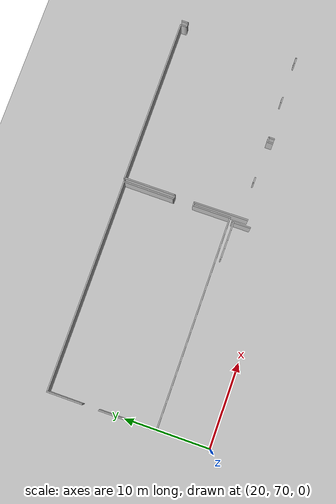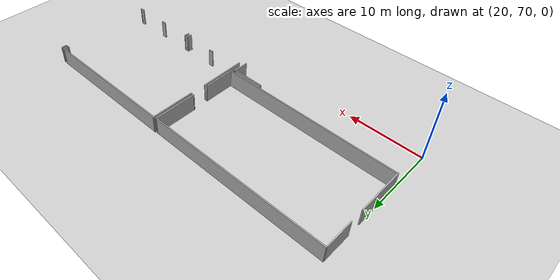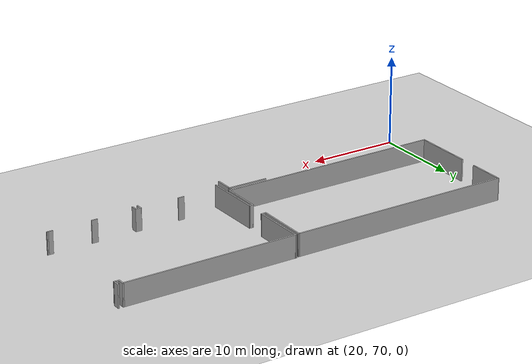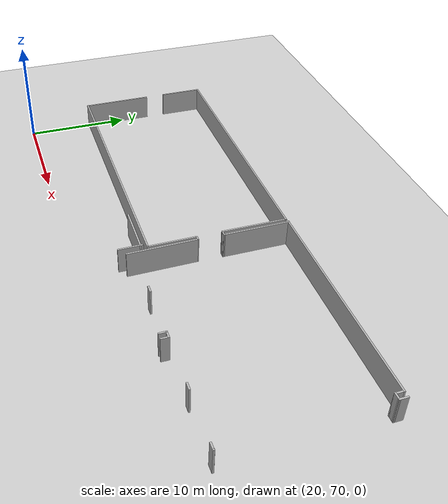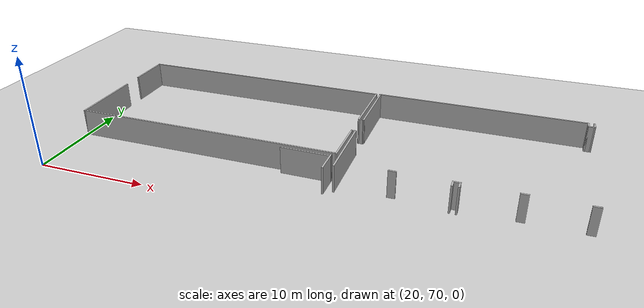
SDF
<sdf version="1.6">
 <world name="default">
  <model name="ground_plane">
   <static>1</static>
   <link name="link">
    <collision name="collision">
     <geometry><plane><normal>0 0 1</normal><size>200 100</size></plane></geometry>
     <surface><friction><ode><mu>100</mu><mu2>50</mu2></ode></friction></surface>
    </collision>
    <visual name="visual">
     <cast_shadows>0</cast_shadows>
     <geometry><plane><normal>0 0 1</normal><size>200 100</size></plane></geometry>
     <material>
      <script><uri>file://media/materials/scripts/gazebo.material</uri><name>Gazebo/Grey</name></script>
     </material>
    </visual>
   </link>
  </model>
  <model name="vgke_production">
   <link name="Wall_104">
    <pose>-53.3163 29.9969 0 0 -0 1.5808</pose>
    <visual name="Wall_104_Visual">
     <pose>0 0 1.25 0 -0 0</pose>
     <geometry><box><size>6.42774 0.15 2.5</size></box></geometry>
    </visual>
    <collision name="Wall_104_Collision">
     <pose>0 0 1.25 0 -0 0</pose>
     <geometry><box><size>6.42774 0.15 2.5</size></box></geometry>
    </collision>
    <inertial>
     <inertia><ixx>1</ixx><ixy>0</ixy><ixz>0</ixz><iyy>1</iyy><iyz>0</iyz><izz>1</izz></inertia>
     <mass>1</mass>
    </inertial>
   </link>
   <link name="Wall_110">
    <pose>-54.0352 27.3522 0 0 -0 1.5708</pose>
    <visual name="Wall_110_Visual">
     <pose>0 0 1.25 0 -0 0</pose>
     <geometry><box><size>2.25 0.15 2.5</size></box></geometry>
    </visual>
    <collision name="Wall_110_Collision">
     <pose>0 0 1.25 0 -0 0</pose>
     <geometry><box><size>2.25 0.15 2.5</size></box></geometry>
    </collision>
    <inertial>
     <inertia><ixx>1</ixx><ixy>0</ixy><ixz>0</ixz><iyy>1</iyy><iyz>0</iyz><izz>1</izz></inertia>
     <mass>1</mass>
    </inertial>
   </link>
   <link name="Wall_112">
    <pose>-56.2152 28.2522 0 0 0 -0.006883</pose>
    <visual name="Wall_112_Visual">
     <pose>0 0 1.25 0 -0 0</pose>
     <geometry><box><size>4.51595 0.15 2.5</size></box></geometry>
    </visual>
    <collision name="Wall_112_Collision">
     <pose>0 0 1.25 0 -0 0</pose>
     <geometry><box><size>4.51595 0.15 2.5</size></box></geometry>
    </collision>
    <inertial>
     <inertia><ixx>1</ixx><ixy>0</ixy><ixz>0</ixz><iyy>1</iyy><iyz>0</iyz><izz>1</izz></inertia>
     <mass>1</mass>
    </inertial>
   </link>
   <link name="Wall_511">
    <pose>-48.6836 27.5522 0 0 -0 0</pose>
    <visual name="Wall_511_Visual">
     <pose>0 0 1.25 0 -0 0</pose>
     <geometry><box><size>0.688246 0.15 2.5</size></box></geometry>
    </visual>
    <collision name="Wall_511_Collision">
     <pose>0 0 1.25 0 -0 0</pose>
     <geometry><box><size>0.688246 0.15 2.5</size></box></geometry>
    </collision>
    <inertial>
     <inertia><ixx>1</ixx><ixy>0</ixy><ixz>0</ixz><iyy>1</iyy><iyz>0</iyz><izz>1</izz></inertia>
     <mass>1</mass>
    </inertial>
   </link>
   <link name="Wall_516">
    <pose>-43.6836 27.5683 0 0 -0 0</pose>
    <visual name="Wall_516_Visual">
     <pose>0 0 1.25 0 -0 0</pose>
     <geometry><box><size>0.698983 0.15 2.5</size></box></geometry>
    </visual>
    <collision name="Wall_516_Collision">
     <pose>0 0 1.25 0 -0 0</pose>
     <geometry><box><size>0.698983 0.15 2.5</size></box></geometry>
    </collision>
    <inertial>
     <inertia><ixx>1</ixx><ixy>0</ixy><ixz>0</ixz><iyy>1</iyy><iyz>0</iyz><izz>1</izz></inertia>
     <mass>1</mass>
    </inertial>
   </link>
   <link name="Wall_517">
    <pose>-43.4091 27.2683 0 0 0 -1.5708</pose>
    <visual name="Wall_517_Visual">
     <pose>0 0 1.25 0 -0 0</pose>
     <geometry><box><size>0.75 0.15 2.5</size></box></geometry>
    </visual>
    <collision name="Wall_517_Collision">
     <pose>0 0 1.25 0 -0 0</pose>
     <geometry><box><size>0.75 0.15 2.5</size></box></geometry>
    </collision>
    <inertial>
     <inertia><ixx>1</ixx><ixy>0</ixy><ixz>0</ixz><iyy>1</iyy><iyz>0</iyz><izz>1</izz></inertia>
     <mass>1</mass>
    </inertial>
   </link>
   <link name="Wall_519">
    <pose>-43.9581 27.2683 0 0 0 -1.5708</pose>
    <visual name="Wall_519_Visual">
     <pose>0 0 1.25 0 -0 0</pose>
     <geometry><box><size>0.75 0.15 2.5</size></box></geometry>
    </visual>
    <collision name="Wall_519_Collision">
     <pose>0 0 1.25 0 -0 0</pose>
     <geometry><box><size>0.75 0.15 2.5</size></box></geometry>
    </collision>
    <inertial>
     <inertia><ixx>1</ixx><ixy>0</ixy><ixz>0</ixz><iyy>1</iyy><iyz>0</iyz><izz>1</izz></inertia>
     <mass>1</mass>
    </inertial>
   </link>
   <link name="Wall_521">
    <pose>-38.6997 27.5575 0 0 -0 0</pose>
    <visual name="Wall_521_Visual">
     <pose>0 0 1.25 0 -0 0</pose>
     <geometry><box><size>0.677455 0.15 2.5</size></box></geometry>
    </visual>
    <collision name="Wall_521_Collision">
     <pose>0 0 1.25 0 -0 0</pose>
     <geometry><box><size>0.677455 0.15 2.5</size></box></geometry>
    </collision>
    <inertial>
     <inertia><ixx>1</ixx><ixy>0</ixy><ixz>0</ixz><iyy>1</iyy><iyz>0</iyz><izz>1</izz></inertia>
     <mass>1</mass>
    </inertial>
   </link>
   <link name="Wall_527">
    <pose>-33.4748 27.5716 0 0 -0 0</pose>
    <visual name="Wall_527_Visual">
     <pose>0 0 1.25 0 -0 0</pose>
     <geometry><box><size>0.15 0.15 2.5</size></box></geometry>
    </visual>
    <collision name="Wall_527_Collision">
     <pose>0 0 1.25 0 -0 0</pose>
     <geometry><box><size>0.15 0.15 2.5</size></box></geometry>
    </collision>
    <inertial>
     <inertia><ixx>1</ixx><ixy>0</ixy><ixz>0</ixz><iyy>1</iyy><iyz>0</iyz><izz>1</izz></inertia>
     <mass>1</mass>
    </inertial>
   </link>
   <link name="Wall_530">
    <pose>-33.7111 27.5529 0 0 -0 0</pose>
    <visual name="Wall_530_Visual">
     <pose>0 0 1.25 0 -0 0</pose>
     <geometry><box><size>0.678859 0.15 2.5</size></box></geometry>
    </visual>
    <collision name="Wall_530_Collision">
     <pose>0 0 1.25 0 -0 0</pose>
     <geometry><box><size>0.678859 0.15 2.5</size></box></geometry>
    </collision>
    <inertial>
     <inertia><ixx>1</ixx><ixy>0</ixy><ixz>0</ixz><iyy>1</iyy><iyz>0</iyz><izz>1</izz></inertia>
     <mass>1</mass>
    </inertial>
   </link>
   <link name="Wall_586">
    <pose>-33.4609 41.1616 0 0 0 -1.56825</pose>
    <visual name="Wall_586_Visual">
     <pose>0 0 1.25 0 -0 0</pose>
     <geometry><box><size>0.818568 0.15 2.5</size></box></geometry>
    </visual>
    <collision name="Wall_586_Collision">
     <pose>0 0 1.25 0 -0 0</pose>
     <geometry><box><size>0.818568 0.15 2.5</size></box></geometry>
    </collision>
    <inertial>
     <inertia><ixx>1</ixx><ixy>0</ixy><ixz>0</ixz><iyy>1</iyy><iyz>0</iyz><izz>1</izz></inertia>
     <mass>1</mass>
    </inertial>
   </link>
   <link name="Wall_587">
    <pose>-33.7174 40.8274 0 0 -0 3.14159</pose>
    <visual name="Wall_587_Visual">
     <pose>0 0 1.25 0 -0 0</pose>
     <geometry><box><size>0.664639 0.15 2.5</size></box></geometry>
    </visual>
    <collision name="Wall_587_Collision">
     <pose>0 0 1.25 0 -0 0</pose>
     <geometry><box><size>0.664639 0.15 2.5</size></box></geometry>
    </collision>
    <inertial>
     <inertia><ixx>1</ixx><ixy>0</ixy><ixz>0</ixz><iyy>1</iyy><iyz>0</iyz><izz>1</izz></inertia>
     <mass>1</mass>
    </inertial>
   </link>
   <link name="Wall_588">
    <pose>-33.9747 41.1668 0 0 -0 1.5708</pose>
    <visual name="Wall_588_Visual">
     <pose>0 0 1.25 0 -0 0</pose>
     <geometry><box><size>0.828805 0.15 2.5</size></box></geometry>
    </visual>
    <collision name="Wall_588_Collision">
     <pose>0 0 1.25 0 -0 0</pose>
     <geometry><box><size>0.828805 0.15 2.5</size></box></geometry>
    </collision>
    <inertial>
     <inertia><ixx>1</ixx><ixy>0</ixy><ixz>0</ixz><iyy>1</iyy><iyz>0</iyz><izz>1</izz></inertia>
     <mass>1</mass>
    </inertial>
   </link>
   <link name="Wall_590">
    <pose>-43.6497 41.5061 0 0 -0 3.14159</pose>
    <visual name="Wall_590_Visual">
     <pose>0 0 1.25 0 -0 0</pose>
     <geometry><box><size>19.5 0.15 2.5</size></box></geometry>
    </visual>
    <collision name="Wall_590_Collision">
     <pose>0 0 1.25 0 -0 0</pose>
     <geometry><box><size>19.5 0.15 2.5</size></box></geometry>
    </collision>
    <inertial>
     <inertia><ixx>1</ixx><ixy>0</ixy><ixz>0</ixz><iyy>1</iyy><iyz>0</iyz><izz>1</izz></inertia>
     <mass>1</mass>
    </inertial>
   </link>
   <link name="Wall_592">
    <pose>-53.2733 38.5114 0 0 -0 1.5708</pose>
    <visual name="Wall_592_Visual">
     <pose>0 0 1.25 0 -0 0</pose>
     <geometry><box><size>6.1714 0.15 2.5</size></box></geometry>
    </visual>
    <collision name="Wall_592_Collision">
     <pose>0 0 1.25 0 -0 0</pose>
     <geometry><box><size>6.1714 0.15 2.5</size></box></geometry>
    </collision>
    <inertial>
     <inertia><ixx>1</ixx><ixy>0</ixy><ixz>0</ixz><iyy>1</iyy><iyz>0</iyz><izz>1</izz></inertia>
     <mass>1</mass>
    </inertial>
   </link>
   <link name="Wall_594">
    <pose>-53.5013 35.5012 0 0 -0 3.13908</pose>
    <visual name="Wall_594_Visual">
     <pose>0 0 1.25 0 -0 0</pose>
     <geometry><box><size>0.605998 0.15 2.5</size></box></geometry>
    </visual>
    <collision name="Wall_594_Collision">
     <pose>0 0 1.25 0 -0 0</pose>
     <geometry><box><size>0.605998 0.15 2.5</size></box></geometry>
    </collision>
    <inertial>
     <inertia><ixx>1</ixx><ixy>0</ixy><ixz>0</ixz><iyy>1</iyy><iyz>0</iyz><izz>1</izz></inertia>
     <mass>1</mass>
    </inertial>
   </link>
   <link name="Wall_596">
    <pose>-53.7071 38.4648 0 0 -0 1.56329</pose>
    <visual name="Wall_596_Visual">
     <pose>0 0 1.25 0 -0 0</pose>
     <geometry><box><size>6.0766 0.15 2.5</size></box></geometry>
    </visual>
    <collision name="Wall_596_Collision">
     <pose>0 0 1.25 0 -0 0</pose>
     <geometry><box><size>6.0766 0.15 2.5</size></box></geometry>
    </collision>
    <inertial>
     <inertia><ixx>1</ixx><ixy>0</ixy><ixz>0</ixz><iyy>1</iyy><iyz>0</iyz><izz>1</izz></inertia>
     <mass>1</mass>
    </inertial>
   </link>
   <link name="Wall_598">
    <pose>-66.1031 41.4278 0 0 -0 3.14159</pose>
    <visual name="Wall_598_Visual">
     <pose>0 0 1.25 0 -0 0</pose>
     <geometry><box><size>25 0.15 2.5</size></box></geometry>
    </visual>
    <collision name="Wall_598_Collision">
     <pose>0 0 1.25 0 -0 0</pose>
     <geometry><box><size>25 0.15 2.5</size></box></geometry>
    </collision>
    <inertial>
     <inertia><ixx>1</ixx><ixy>0</ixy><ixz>0</ixz><iyy>1</iyy><iyz>0</iyz><izz>1</izz></inertia>
     <mass>1</mass>
    </inertial>
   </link>
   <link name="Wall_600">
    <pose>-78.5338 39.4205 0 0 0 -1.57364</pose>
    <visual name="Wall_600_Visual">
     <pose>0 0 1.25 0 -0 0</pose>
     <geometry><box><size>4.16465 0.15 2.5</size></box></geometry>
    </visual>
    <collision name="Wall_600_Collision">
     <pose>0 0 1.25 0 -0 0</pose>
     <geometry><box><size>4.16465 0.15 2.5</size></box></geometry>
    </collision>
    <inertial>
     <inertia><ixx>1</ixx><ixy>0</ixy><ixz>0</ixz><iyy>1</iyy><iyz>0</iyz><izz>1</izz></inertia>
     <mass>1</mass>
    </inertial>
   </link>
   <link name="Wall_71">
    <pose>-78.5477 32.0856 0 0 0 -1.5708</pose>
    <visual name="Wall_71_Visual">
     <pose>0 0 1.25 0 -0 0</pose>
     <geometry><box><size>6.75 0.15 2.5</size></box></geometry>
    </visual>
    <collision name="Wall_71_Collision">
     <pose>0 0 1.25 0 -0 0</pose>
     <geometry><box><size>6.75 0.15 2.5</size></box></geometry>
    </collision>
    <inertial>
     <inertia><ixx>1</ixx><ixy>0</ixy><ixz>0</ixz><iyy>1</iyy><iyz>0</iyz><izz>1</izz></inertia>
     <mass>1</mass>
    </inertial>
   </link>
   <link name="Wall_72">
    <pose>-66.1227 28.7856 0 0 -0 0</pose>
    <visual name="Wall_72_Visual">
     <pose>0 0 1.25 0 -0 0</pose>
     <geometry><box><size>25 0.15 2.5</size></box></geometry>
    </visual>
    <collision name="Wall_72_Collision">
     <pose>0 0 1.25 0 -0 0</pose>
     <geometry><box><size>25 0.15 2.5</size></box></geometry>
    </collision>
    <inertial>
     <inertia><ixx>1</ixx><ixy>0</ixy><ixz>0</ixz><iyy>1</iyy><iyz>0</iyz><izz>1</izz></inertia>
     <mass>1</mass>
    </inertial>
   </link>
   <link name="Wall_76">
    <pose>-53.6977 30.9606 0 0 -0 1.5708</pose>
    <visual name="Wall_76_Visual">
     <pose>0 0 1.25 0 -0 0</pose>
     <geometry><box><size>4.5 0.15 2.5</size></box></geometry>
    </visual>
    <collision name="Wall_76_Collision">
     <pose>0 0 1.25 0 -0 0</pose>
     <geometry><box><size>4.5 0.15 2.5</size></box></geometry>
    </collision>
    <inertial>
     <inertia><ixx>1</ixx><ixy>0</ixy><ixz>0</ixz><iyy>1</iyy><iyz>0</iyz><izz>1</izz></inertia>
     <mass>1</mass>
    </inertial>
   </link>
   <link name="Wall_77">
    <pose>-53.5227 33.1356 0 0 -0 0</pose>
    <visual name="Wall_77_Visual">
     <pose>0 0 1.25 0 -0 0</pose>
     <geometry><box><size>0.5 0.15 2.5</size></box></geometry>
    </visual>
    <collision name="Wall_77_Collision">
     <pose>0 0 1.25 0 -0 0</pose>
     <geometry><box><size>0.5 0.15 2.5</size></box></geometry>
    </collision>
    <inertial>
     <inertia><ixx>1</ixx><ixy>0</ixy><ixz>0</ixz><iyy>1</iyy><iyz>0</iyz><izz>1</izz></inertia>
     <mass>1</mass>
    </inertial>
   </link>
   <pose>98.6 47.426 0.01 0 0 0</pose>
  </model>
 </world>
</sdf>
